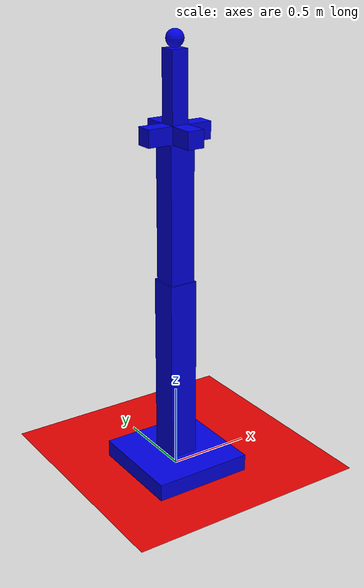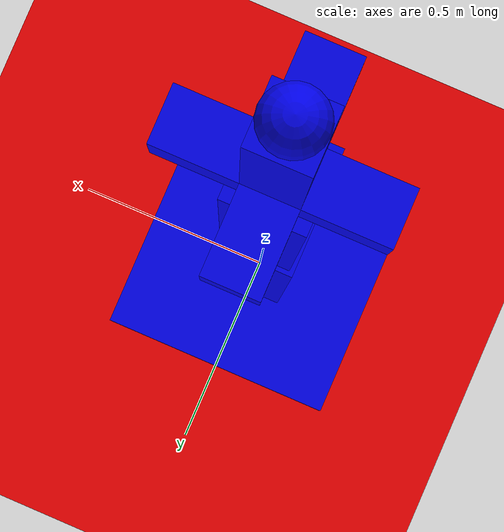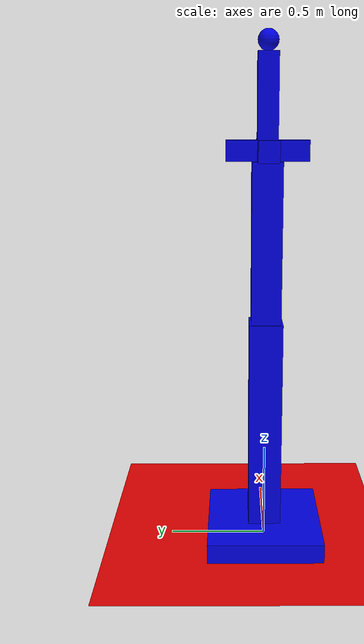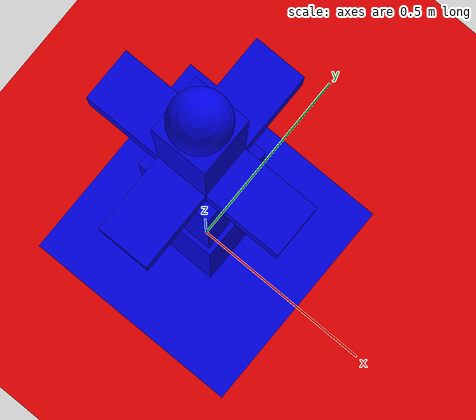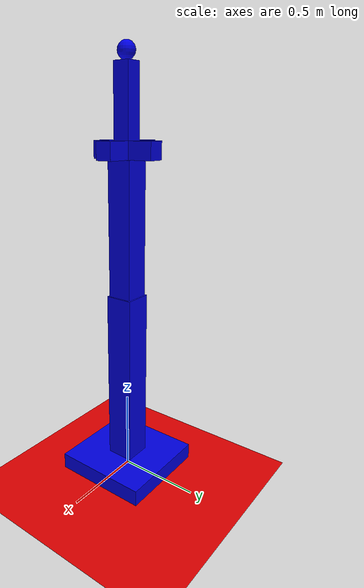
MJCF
<mujoco>
    <option gravity="0 0 0"/>

    <worldbody>
        <light diffuse=".5 .5 .5" pos="0 0 3" dir="0 0 -1"/>
        <geom type="plane" size="1 1 0.1" rgba=".9 0 0 1"/>
        <body pos="0 0 0" name="基座">
            <joint type="hinge" axis="0 0 1" pos="0 0 -0.6" name="肩关节Z"/>
            <geom type="box" size=".3 .3 .1" rgba="0 .0 0.9 1"/>
            <body pos="0 0 0.6" name="肩">
                <joint type="hinge" axis="0 1 0" pos="0 0 -0.57" name="肩关节Y"/>
                <geom type="box" size=".085 .085 .6" rgba="0 .0 0.9 1"/>
                <body pos="0 0 1.0" name="大臂">
                    <joint type="hinge" axis="0 1 0" pos="0 0 -0.4" name="轴关节Y"/>
                    <geom type="box" size=".075 .075 .4" rgba="0 .0 0.9 1"/>
                    <body pos="0 0 0.45" name="小臂">
                        <joint type="hinge" axis="1 0 0" pos="0 0 0" name="腕关节X"/>
                        <geom type="box" size=".2 .05 .05" rgba="0 .0 0.9 1"/>
                        <body name="手掌1">
                            <joint type="hinge" axis="0 1 0" pos="0 0 0" name="腕关节Y"/>
                            <geom type="box" size=".05 .2 .05" rgba="0 .0 0.9 1"/>
                            <body pos="0 0 0.25" name="手掌2">
                                <joint type="hinge" axis="0 0 1" pos="0 0 -0.2" name="腕关节Z"/>
                                <geom type="box" size=".05 .05 .2" rgba="0 .0 0.9 1"/>
                                <body pos="0 0 0.25" name="执行末端">
                                    <geom type="sphere" size=".05" rgba="0 .0 0.9 1" density="100000"/>
                                </body>
                            </body>
                        </body>
                    </body>
                </body>
            </body>

        </body>
    </worldbody>
</mujoco>
